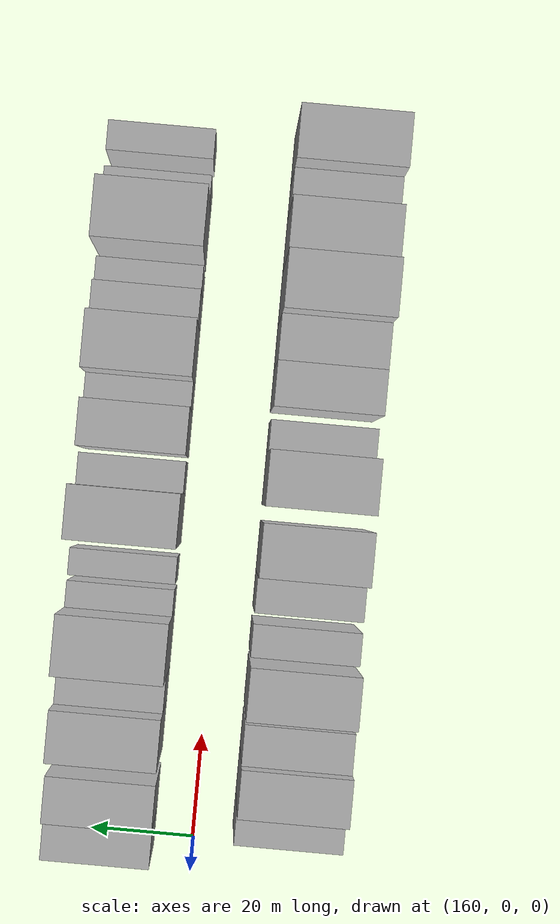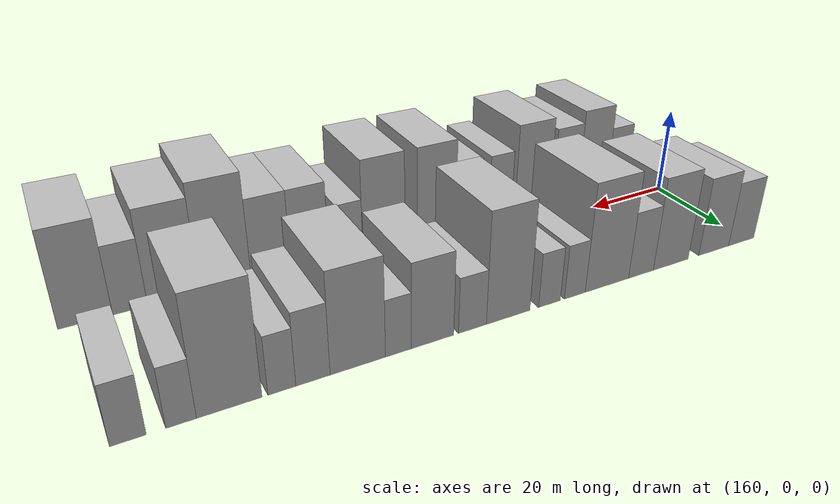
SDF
<sdf version="1.6">
 <world name="default">
  <model name="building_15">
   <static>1</static>
   <pose>161.5057 17.5000 0 0.000000 0.000000 1.570796</pose>
   <link name="link">
    <pose>0 0 7.50 0 0 0</pose>
    <collision name="collision"><geometry><box><size>20.0000 7.4865 15.0000</size></box></geometry></collision>
    <visual name="visual">
     <cast_shadows>0</cast_shadows>
     <geometry><box><size>20.0000 7.4865 15.0000</size></box></geometry>
     <material>
      <script>
       <uri>model://HANNAS_wall/materials/scripts</uri>
       <uri>model://HANNAS_wall/materials/textures</uri>
       <name>vrc/HANNAS_wall</name>
      </script>
     </material>
    </visual>
   </link>
  </model>
  <model name="building_16">
   <static>1</static>
   <pose>169.5354 17.5000 0 0.000000 0.000000 1.570796</pose>
   <link name="link">
    <pose>0 0 9.00 0 0 0</pose>
    <collision name="collision"><geometry><box><size>20.0000 8.5730 18.0000</size></box></geometry></collision>
    <visual name="visual">
     <cast_shadows>0</cast_shadows>
     <geometry><box><size>20.0000 8.5730 18.0000</size></box></geometry>
     <material>
      <script>
       <uri>model://HANNAS_wall/materials/scripts</uri>
       <uri>model://HANNAS_wall/materials/textures</uri>
       <name>vrc/HANNAS_wall</name>
      </script>
     </material>
    </visual>
   </link>
  </model>
  <model name="building_17">
   <static>1</static>
   <pose>181.5526 17.5000 0 0.000000 0.000000 1.570796</pose>
   <link name="link">
    <pose>0 0 10.50 0 0 0</pose>
    <collision name="collision"><geometry><box><size>20.0000 9.4613 21.0000</size></box></geometry></collision>
    <visual name="visual">
     <cast_shadows>0</cast_shadows>
     <geometry><box><size>20.0000 9.4613 21.0000</size></box></geometry>
     <material>
      <script>
       <uri>model://HANNAS_wall/materials/scripts</uri>
       <uri>model://HANNAS_wall/materials/textures</uri>
       <name>vrc/HANNAS_wall</name>
      </script>
     </material>
    </visual>
   </link>
  </model>
  <model name="building_18">
   <static>1</static>
   <pose>189.5283 17.5000 0 0.000000 0.000000 1.570796</pose>
   <link name="link">
    <pose>0 0 7.50 0 0 0</pose>
    <collision name="collision"><geometry><box><size>20.0000 6.4901 15.0000</size></box></geometry></collision>
    <visual name="visual">
     <cast_shadows>0</cast_shadows>
     <geometry><box><size>20.0000 6.4901 15.0000</size></box></geometry>
     <material>
      <script>
       <uri>model://HANNAS_wall/materials/scripts</uri>
       <uri>model://HANNAS_wall/materials/textures</uri>
       <name>vrc/HANNAS_wall</name>
      </script>
     </material>
    </visual>
   </link>
  </model>
  <model name="building_19">
   <static>1</static>
   <pose>198.2223 17.5000 0 0.000000 0.000000 1.570796</pose>
   <link name="link">
    <pose>0 0 12.00 0 0 0</pose>
    <collision name="collision"><geometry><box><size>20.0000 10.8981 24.0000</size></box></geometry></collision>
    <visual name="visual">
     <cast_shadows>0</cast_shadows>
     <geometry><box><size>20.0000 10.8981 24.0000</size></box></geometry>
     <material>
      <script>
       <uri>model://HANNAS_wall/materials/scripts</uri>
       <uri>model://HANNAS_wall/materials/textures</uri>
       <name>vrc/HANNAS_wall</name>
      </script>
     </material>
    </visual>
   </link>
  </model>
  <model name="building_20">
   <static>1</static>
   <pose>206.1692 17.5000 0 0.000000 0.000000 1.570796</pose>
   <link name="link">
    <pose>0 0 6.00 0 0 0</pose>
    <collision name="collision"><geometry><box><size>20.0000 4.9956 12.0000</size></box></geometry></collision>
    <visual name="visual">
     <cast_shadows>0</cast_shadows>
     <geometry><box><size>20.0000 4.9956 12.0000</size></box></geometry>
     <material>
      <script>
       <uri>model://HANNAS_wall/materials/scripts</uri>
       <uri>model://HANNAS_wall/materials/textures</uri>
       <name>vrc/HANNAS_wall</name>
      </script>
     </material>
    </visual>
   </link>
  </model>
  <model name="building_21">
   <static>1</static>
   <pose>212.2109 17.5000 0 0.000000 0.000000 1.570796</pose>
   <link name="link">
    <pose>0 0 6.00 0 0 0</pose>
    <collision name="collision"><geometry><box><size>20.0000 5.0878 12.0000</size></box></geometry></collision>
    <visual name="visual">
     <cast_shadows>0</cast_shadows>
     <geometry><box><size>20.0000 5.0878 12.0000</size></box></geometry>
     <material>
      <script>
       <uri>model://HANNAS_wall/materials/scripts</uri>
       <uri>model://HANNAS_wall/materials/textures</uri>
       <name>vrc/HANNAS_wall</name>
      </script>
     </material>
    </visual>
   </link>
  </model>
  <model name="building_22">
   <static>1</static>
   <pose>221.6226 17.5000 0 0.000000 0.000000 1.570796</pose>
   <link name="link">
    <pose>0 0 12.00 0 0 0</pose>
    <collision name="collision"><geometry><box><size>20.0000 9.7358 24.0000</size></box></geometry></collision>
    <visual name="visual">
     <cast_shadows>0</cast_shadows>
     <geometry><box><size>20.0000 9.7358 24.0000</size></box></geometry>
     <material>
      <script>
       <uri>model://HANNAS_wall/materials/scripts</uri>
       <uri>model://HANNAS_wall/materials/textures</uri>
       <name>vrc/HANNAS_wall</name>
      </script>
     </material>
    </visual>
   </link>
  </model>
  <model name="building_23">
   <static>1</static>
   <pose>229.4698 17.5000 0 0.000000 0.000000 1.570796</pose>
   <link name="link">
    <pose>0 0 6.00 0 0 0</pose>
    <collision name="collision"><geometry><box><size>20.0000 5.9585 12.0000</size></box></geometry></collision>
    <visual name="visual">
     <cast_shadows>0</cast_shadows>
     <geometry><box><size>20.0000 5.9585 12.0000</size></box></geometry>
     <material>
      <script>
       <uri>model://HANNAS_wall/materials/scripts</uri>
       <uri>model://HANNAS_wall/materials/textures</uri>
       <name>vrc/HANNAS_wall</name>
      </script>
     </material>
    </visual>
   </link>
  </model>
  <model name="building_24">
   <static>1</static>
   <pose>237.7962 17.5000 0 0.000000 0.000000 1.570796</pose>
   <link name="link">
    <pose>0 0 9.00 0 0 0</pose>
    <collision name="collision"><geometry><box><size>20.0000 8.6944 18.0000</size></box></geometry></collision>
    <visual name="visual">
     <cast_shadows>0</cast_shadows>
     <geometry><box><size>20.0000 8.6944 18.0000</size></box></geometry>
     <material>
      <script>
       <uri>model://HANNAS_wall/materials/scripts</uri>
       <uri>model://HANNAS_wall/materials/textures</uri>
       <name>vrc/HANNAS_wall</name>
      </script>
     </material>
    </visual>
   </link>
  </model>
  <model name="building_25">
   <static>1</static>
   <pose>244.6974 17.5000 0 0.000000 0.000000 1.570796</pose>
   <link name="link">
    <pose>0 0 6.00 0 0 0</pose>
    <collision name="collision"><geometry><box><size>20.0000 5.1079 12.0000</size></box></geometry></collision>
    <visual name="visual">
     <cast_shadows>0</cast_shadows>
     <geometry><box><size>20.0000 5.1079 12.0000</size></box></geometry>
     <material>
      <script>
       <uri>model://HANNAS_wall/materials/scripts</uri>
       <uri>model://HANNAS_wall/materials/textures</uri>
       <name>vrc/HANNAS_wall</name>
      </script>
     </material>
    </visual>
   </link>
  </model>
  <model name="building_26">
   <static>1</static>
   <pose>252.4912 17.5000 0 0.000000 0.000000 1.570796</pose>
   <link name="link">
    <pose>0 0 10.50 0 0 0</pose>
    <collision name="collision"><geometry><box><size>20.0000 10.4798 21.0000</size></box></geometry></collision>
    <visual name="visual">
     <cast_shadows>0</cast_shadows>
     <geometry><box><size>20.0000 10.4798 21.0000</size></box></geometry>
     <material>
      <script>
       <uri>model://HANNAS_wall/materials/scripts</uri>
       <uri>model://HANNAS_wall/materials/textures</uri>
       <name>vrc/HANNAS_wall</name>
      </script>
     </material>
    </visual>
   </link>
  </model>
  <model name="building_27">
   <static>1</static>
   <pose>260.8215 17.5000 0 0.000000 0.000000 1.570796</pose>
   <link name="link">
    <pose>0 0 7.50 0 0 0</pose>
    <collision name="collision"><geometry><box><size>20.0000 6.1807 15.0000</size></box></geometry></collision>
    <visual name="visual">
     <cast_shadows>0</cast_shadows>
     <geometry><box><size>20.0000 6.1807 15.0000</size></box></geometry>
     <material>
      <script>
       <uri>model://HANNAS_wall/materials/scripts</uri>
       <uri>model://HANNAS_wall/materials/textures</uri>
       <name>vrc/HANNAS_wall</name>
      </script>
     </material>
    </visual>
   </link>
  </model>
  <model name="building_28">
   <static>1</static>
   <pose>266.3518 17.5000 0 0.000000 0.000000 1.570796</pose>
   <link name="link">
    <pose>0 0 6.00 0 0 0</pose>
    <collision name="collision"><geometry><box><size>20.0000 4.8800 12.0000</size></box></geometry></collision>
    <visual name="visual">
     <cast_shadows>0</cast_shadows>
     <geometry><box><size>20.0000 4.8800 12.0000</size></box></geometry>
     <material>
      <script>
       <uri>model://HANNAS_wall/materials/scripts</uri>
       <uri>model://HANNAS_wall/materials/textures</uri>
       <name>vrc/HANNAS_wall</name>
      </script>
     </material>
    </visual>
   </link>
  </model>
  <model name="building_29">
   <static>1</static>
   <pose>275.2302 17.5000 0 0.000000 0.000000 1.570796</pose>
   <link name="link">
    <pose>0 0 12.00 0 0 0</pose>
    <collision name="collision"><geometry><box><size>20.0000 10.8769 24.0000</size></box></geometry></collision>
    <visual name="visual">
     <cast_shadows>0</cast_shadows>
     <geometry><box><size>20.0000 10.8769 24.0000</size></box></geometry>
     <material>
      <script>
       <uri>model://HANNAS_wall/materials/scripts</uri>
       <uri>model://HANNAS_wall/materials/textures</uri>
       <name>vrc/HANNAS_wall</name>
      </script>
     </material>
    </visual>
   </link>
  </model>
  <model name="building_30">
   <static>1</static>
   <pose>283.0954 17.5000 0 0.000000 0.000000 1.570796</pose>
   <link name="link">
    <pose>0 0 6.00 0 0 0</pose>
    <collision name="collision"><geometry><box><size>20.0000 4.8534 12.0000</size></box></geometry></collision>
    <visual name="visual">
     <cast_shadows>0</cast_shadows>
     <geometry><box><size>20.0000 4.8534 12.0000</size></box></geometry>
     <material>
      <script>
       <uri>model://HANNAS_wall/materials/scripts</uri>
       <uri>model://HANNAS_wall/materials/textures</uri>
       <name>vrc/HANNAS_wall</name>
      </script>
     </material>
    </visual>
   </link>
  </model>
  <model name="building_31">
   <static>1</static>
   <pose>291.2903 17.5000 0 0.000000 0.000000 1.570796</pose>
   <link name="link">
    <pose>0 0 6.00 0 0 0</pose>
    <collision name="collision"><geometry><box><size>20.0000 5.5366 12.0000</size></box></geometry></collision>
    <visual name="visual">
     <cast_shadows>0</cast_shadows>
     <geometry><box><size>20.0000 5.5366 12.0000</size></box></geometry>
     <material>
      <script>
       <uri>model://HANNAS_wall/materials/scripts</uri>
       <uri>model://HANNAS_wall/materials/textures</uri>
       <name>vrc/HANNAS_wall</name>
      </script>
     </material>
    </visual>
   </link>
  </model>
  <model name="building_48">
   <static>1</static>
   <pose>166.8417 -17.5000 0 0.000000 0.000000 1.570796</pose>
   <link name="link">
    <pose>0 0 7.50 0 0 0</pose>
    <collision name="collision"><geometry><box><size>20.0000 6.4364 15.0000</size></box></geometry></collision>
    <visual name="visual">
     <cast_shadows>0</cast_shadows>
     <geometry><box><size>20.0000 6.4364 15.0000</size></box></geometry>
     <material>
      <script>
       <uri>model://HANNAS_wall/materials/scripts</uri>
       <uri>model://HANNAS_wall/materials/textures</uri>
       <name>vrc/HANNAS_wall</name>
      </script>
     </material>
    </visual>
   </link>
  </model>
  <model name="building_49">
   <static>1</static>
   <pose>174.4394 -17.5000 0 0.000000 0.000000 1.570796</pose>
   <link name="link">
    <pose>0 0 10.50 0 0 0</pose>
    <collision name="collision"><geometry><box><size>20.0000 8.7588 21.0000</size></box></geometry></collision>
    <visual name="visual">
     <cast_shadows>0</cast_shadows>
     <geometry><box><size>20.0000 8.7588 21.0000</size></box></geometry>
     <material>
      <script>
       <uri>model://HANNAS_wall/materials/scripts</uri>
       <uri>model://HANNAS_wall/materials/textures</uri>
       <name>vrc/HANNAS_wall</name>
      </script>
     </material>
    </visual>
   </link>
  </model>
  <model name="building_50">
   <static>1</static>
   <pose>182.5665 -17.5000 0 0.000000 0.000000 1.570796</pose>
   <link name="link">
    <pose>0 0 9.00 0 0 0</pose>
    <collision name="collision"><geometry><box><size>20.0000 7.4955 18.0000</size></box></geometry></collision>
    <visual name="visual">
     <cast_shadows>0</cast_shadows>
     <geometry><box><size>20.0000 7.4955 18.0000</size></box></geometry>
     <material>
      <script>
       <uri>model://HANNAS_wall/materials/scripts</uri>
       <uri>model://HANNAS_wall/materials/textures</uri>
       <name>vrc/HANNAS_wall</name>
      </script>
     </material>
    </visual>
   </link>
  </model>
  <model name="building_51">
   <static>1</static>
   <pose>192.1387 -17.5000 0 0.000000 0.000000 1.570796</pose>
   <link name="link">
    <pose>0 0 10.50 0 0 0</pose>
    <collision name="collision"><geometry><box><size>20.0000 9.6490 21.0000</size></box></geometry></collision>
    <visual name="visual">
     <cast_shadows>0</cast_shadows>
     <geometry><box><size>20.0000 9.6490 21.0000</size></box></geometry>
     <material>
      <script>
       <uri>model://HANNAS_wall/materials/scripts</uri>
       <uri>model://HANNAS_wall/materials/textures</uri>
       <name>vrc/HANNAS_wall</name>
      </script>
     </material>
    </visual>
   </link>
  </model>
  <model name="building_52">
   <static>1</static>
   <pose>201.0182 -17.5000 0 0.000000 0.000000 1.570796</pose>
   <link name="link">
    <pose>0 0 7.50 0 0 0</pose>
    <collision name="collision"><geometry><box><size>20.0000 6.1100 15.0000</size></box></geometry></collision>
    <visual name="visual">
     <cast_shadows>0</cast_shadows>
     <geometry><box><size>20.0000 6.1100 15.0000</size></box></geometry>
     <material>
      <script>
       <uri>model://HANNAS_wall/materials/scripts</uri>
       <uri>model://HANNAS_wall/materials/textures</uri>
       <name>vrc/HANNAS_wall</name>
      </script>
     </material>
    </visual>
   </link>
  </model>
  <model name="building_53">
   <static>1</static>
   <pose>209.4812 -17.5000 0 0.000000 0.000000 1.570796</pose>
   <link name="link">
    <pose>0 0 7.50 0 0 0</pose>
    <collision name="collision"><geometry><box><size>20.0000 6.8158 15.0000</size></box></geometry></collision>
    <visual name="visual">
     <cast_shadows>0</cast_shadows>
     <geometry><box><size>20.0000 6.8158 15.0000</size></box></geometry>
     <material>
      <script>
       <uri>model://HANNAS_wall/materials/scripts</uri>
       <uri>model://HANNAS_wall/materials/textures</uri>
       <name>vrc/HANNAS_wall</name>
      </script>
     </material>
    </visual>
   </link>
  </model>
  <model name="building_54">
   <static>1</static>
   <pose>217.7902 -17.5000 0 0.000000 0.000000 1.570796</pose>
   <link name="link">
    <pose>0 0 10.50 0 0 0</pose>
    <collision name="collision"><geometry><box><size>20.0000 9.8024 21.0000</size></box></geometry></collision>
    <visual name="visual">
     <cast_shadows>0</cast_shadows>
     <geometry><box><size>20.0000 9.8024 21.0000</size></box></geometry>
     <material>
      <script>
       <uri>model://HANNAS_wall/materials/scripts</uri>
       <uri>model://HANNAS_wall/materials/textures</uri>
       <name>vrc/HANNAS_wall</name>
      </script>
     </material>
    </visual>
   </link>
  </model>
  <model name="building_55">
   <static>1</static>
   <pose>230.7662 -17.5000 0 0.000000 0.000000 1.570796</pose>
   <link name="link">
    <pose>0 0 10.50 0 0 0</pose>
    <collision name="collision"><geometry><box><size>20.0000 10.1496 21.0000</size></box></geometry></collision>
    <visual name="visual">
     <cast_shadows>0</cast_shadows>
     <geometry><box><size>20.0000 10.1496 21.0000</size></box></geometry>
     <material>
      <script>
       <uri>model://HANNAS_wall/materials/scripts</uri>
       <uri>model://HANNAS_wall/materials/textures</uri>
       <name>vrc/HANNAS_wall</name>
      </script>
     </material>
    </visual>
   </link>
  </model>
  <model name="building_56">
   <static>1</static>
   <pose>238.7526 -17.5000 0 0.000000 0.000000 1.570796</pose>
   <link name="link">
    <pose>0 0 6.00 0 0 0</pose>
    <collision name="collision"><geometry><box><size>20.0000 5.8232 12.0000</size></box></geometry></collision>
    <visual name="visual">
     <cast_shadows>0</cast_shadows>
     <geometry><box><size>20.0000 5.8232 12.0000</size></box></geometry>
     <material>
      <script>
       <uri>model://HANNAS_wall/materials/scripts</uri>
       <uri>model://HANNAS_wall/materials/textures</uri>
       <name>vrc/HANNAS_wall</name>
      </script>
     </material>
    </visual>
   </link>
  </model>
  <model name="building_57">
   <static>1</static>
   <pose>247.8393 -17.5000 0 0.000000 0.000000 1.570796</pose>
   <link name="link">
    <pose>0 0 9.00 0 0 0</pose>
    <collision name="collision"><geometry><box><size>20.0000 8.3503 18.0000</size></box></geometry></collision>
    <visual name="visual">
     <cast_shadows>0</cast_shadows>
     <geometry><box><size>20.0000 8.3503 18.0000</size></box></geometry>
     <material>
      <script>
       <uri>model://HANNAS_wall/materials/scripts</uri>
       <uri>model://HANNAS_wall/materials/textures</uri>
       <name>vrc/HANNAS_wall</name>
      </script>
     </material>
    </visual>
   </link>
  </model>
  <model name="building_58">
   <static>1</static>
   <pose>256.2357 -17.5000 0 0.000000 0.000000 1.570796</pose>
   <link name="link">
    <pose>0 0 9.00 0 0 0</pose>
    <collision name="collision"><geometry><box><size>20.0000 8.4425 18.0000</size></box></geometry></collision>
    <visual name="visual">
     <cast_shadows>0</cast_shadows>
     <geometry><box><size>20.0000 8.4425 18.0000</size></box></geometry>
     <material>
      <script>
       <uri>model://HANNAS_wall/materials/scripts</uri>
       <uri>model://HANNAS_wall/materials/textures</uri>
       <name>vrc/HANNAS_wall</name>
      </script>
     </material>
    </visual>
   </link>
  </model>
  <model name="building_59">
   <static>1</static>
   <pose>265.7404 -17.5000 0 0.000000 0.000000 1.570796</pose>
   <link name="link">
    <pose>0 0 12.00 0 0 0</pose>
    <collision name="collision"><geometry><box><size>20.0000 10.5669 24.0000</size></box></geometry></collision>
    <visual name="visual">
     <cast_shadows>0</cast_shadows>
     <geometry><box><size>20.0000 10.5669 24.0000</size></box></geometry>
     <material>
      <script>
       <uri>model://HANNAS_wall/materials/scripts</uri>
       <uri>model://HANNAS_wall/materials/textures</uri>
       <name>vrc/HANNAS_wall</name>
      </script>
     </material>
    </visual>
   </link>
  </model>
  <model name="building_60">
   <static>1</static>
   <pose>276.0287 -17.5000 0 0.000000 0.000000 1.570796</pose>
   <link name="link">
    <pose>0 0 10.50 0 0 0</pose>
    <collision name="collision"><geometry><box><size>20.0000 10.0098 21.0000</size></box></geometry></collision>
    <visual name="visual">
     <cast_shadows>0</cast_shadows>
     <geometry><box><size>20.0000 10.0098 21.0000</size></box></geometry>
     <material>
      <script>
       <uri>model://HANNAS_wall/materials/scripts</uri>
       <uri>model://HANNAS_wall/materials/textures</uri>
       <name>vrc/HANNAS_wall</name>
      </script>
     </material>
    </visual>
   </link>
  </model>
  <model name="building_61">
   <static>1</static>
   <pose>284.2889 -17.5000 0 0.000000 0.000000 1.570796</pose>
   <link name="link">
    <pose>0 0 7.50 0 0 0</pose>
    <collision name="collision"><geometry><box><size>20.0000 6.5105 15.0000</size></box></geometry></collision>
    <visual name="visual">
     <cast_shadows>0</cast_shadows>
     <geometry><box><size>20.0000 6.5105 15.0000</size></box></geometry>
     <material>
      <script>
       <uri>model://HANNAS_wall/materials/scripts</uri>
       <uri>model://HANNAS_wall/materials/textures</uri>
       <name>vrc/HANNAS_wall</name>
      </script>
     </material>
    </visual>
   </link>
  </model>
  <model name="building_62">
   <static>1</static>
   <pose>292.4462 -17.5000 0 0.000000 0.000000 1.570796</pose>
   <link name="link">
    <pose>0 0 10.50 0 0 0</pose>
    <collision name="collision"><geometry><box><size>20.0000 9.8041 21.0000</size></box></geometry></collision>
    <visual name="visual">
     <cast_shadows>0</cast_shadows>
     <geometry><box><size>20.0000 9.8041 21.0000</size></box></geometry>
     <material>
      <script>
       <uri>model://HANNAS_wall/materials/scripts</uri>
       <uri>model://HANNAS_wall/materials/textures</uri>
       <name>vrc/HANNAS_wall</name>
      </script>
     </material>
    </visual>
   </link>
  </model>
 </world>
</sdf>
